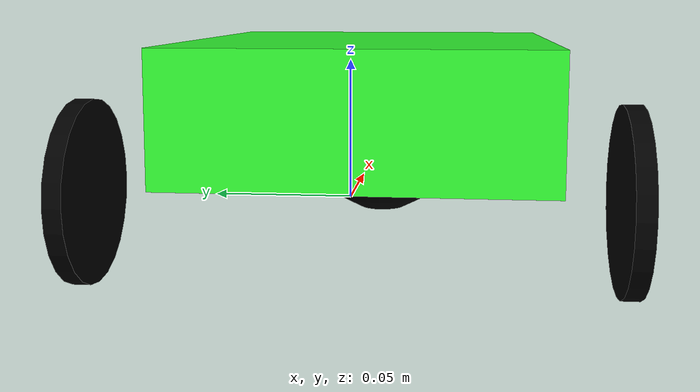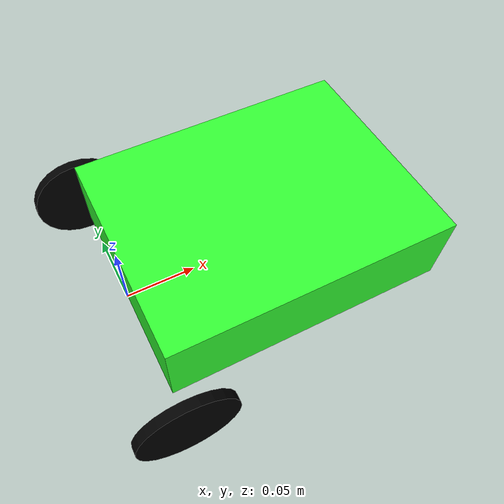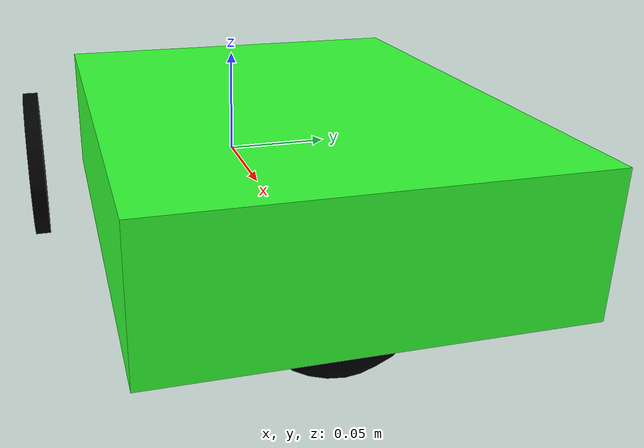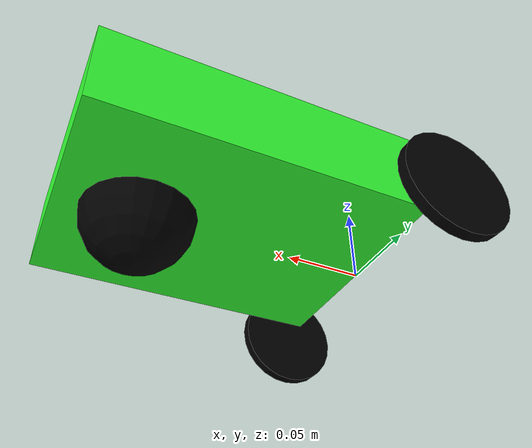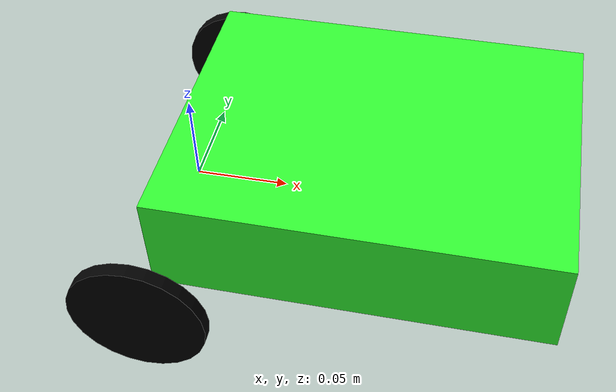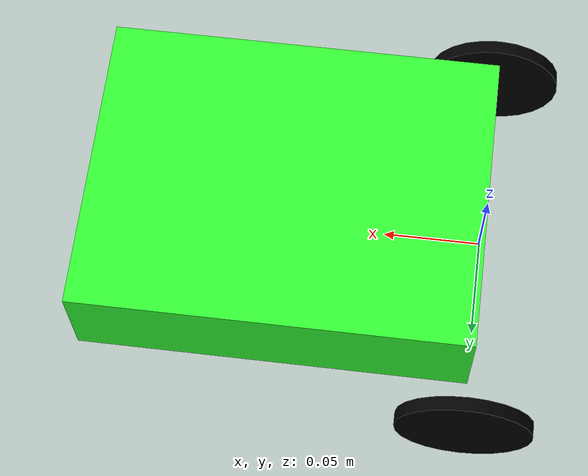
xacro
<?xml version="1.0"?>
<robot xmlns:xacro="http:www.ros.org/wiki/xacro" >

    <xacro:include filename="inertialmacros.xacro"/>

    <material name="white">
        <color rgba="1 1 1 1" />
    </material>

    <material name="black">
        <color rgba="0 0 0 1" />
    </material>

    <material name="green">
        <color rgba="0.2 1 0.2 1" />
    </material>

    <material name="blue">
        <color rgba="0.2 0.2 1 1" />
    </material>

    <material name="red">
        <color rgba="1 0.2 0.2 1" />
    </material>

    <link name="base_link">

    </link>

    <joint name="base_footprint_joint" type="fixed">
        <parent link="base_link"/>
        <child link="base_footprint"/>
        <origin xyz="0 0 0" rpy="0 0 0"/>
    </joint>

    <link name="base_footprint">

    </link>

    <joint name="chassis_joint" type="fixed">
        <parent link="base_link"/>
        <child link="chassis"/>
        <origin xyz="0 0 0"/>
    </joint>

    <link name="chassis">
        <visual>
            <origin xyz="0.1 0 0.027"/>
            <geometry>
                <box size="0.2 0.155 0.054" />
            </geometry>
            <material name="green"/>
        </visual>
        <collision>
            <origin xyz="0.1 0 0.027"/>
            <geometry>
                <box size="0.2 0.155 0.054" />
            </geometry>
        </collision>
        <xacro:inertialbox mass="0.5" x="0.2" y="0.155" z="0.054">
            <origin xyz="0.1 0 0.027" rpy="0 0 0"/>
        </xacro:inertialbox>
    </link>

    <joint name="left_wheel_joint" type="fixed">
        <parent link="base_link"/>
        <child link="left_wheel"/>
        <origin xyz="0 0.1 0" rpy="-${pi/2} 0 0"/>
        <axis xyz="0 0 1"/>
    </joint>

    <link name="left_wheel">
        <visual>
            <geometry>
                <cylinder radius="0.035" length="0.007"/>
            </geometry>
            <material name="black"/>
        </visual>
        <collision>
            <geometry>
                <cylinder radius="0.035" length="0.007"/>
            </geometry>
        </collision>
        <xacro:inertialcylinder mass="0.1" radius="0.035" length="0.007">
            <origin xyz="0 0 0" rpy="0 0 0"/>
        </xacro:inertialcylinder>
    </link>

    <joint name="right_wheel_joint" type="fixed">
        <parent link="base_link"/>
        <child link="right_wheel"/>
        <origin xyz="0 -0.1 0" rpy="${pi/2} 0 0"/>
        <axis xyz="0 0 -1"/>
    </joint>

    <link name="right_wheel">
        <visual>
            <geometry>
                <cylinder radius="0.035" length="0.007"/>
            </geometry>
            <material name="black"/>
        </visual>
        <collision>
            <geometry>
                <cylinder radius="0.035" length="0.007"/>
            </geometry>
        </collision>
        <xacro:inertialcylinder mass="0.1" radius="0.035" length="0.007">
            <origin xyz="0 0 0" rpy="0 0 0"/>
        </xacro:inertialcylinder>
    </link>

    <joint name="caster_wheel_joint" type="fixed">
        <parent link="chassis"/>
        <child link="caster_wheel"/>
        <origin xyz="0.15 0 0"/>
    </joint>

    <link name="caster_wheel">
        <visual>
            <geometry>
                <sphere radius="0.035"/>
            </geometry>
            <material name="black"/>
        </visual>
        <collision>
            <geometry>
                <sphere radius="0.035"/>
            </geometry>
        </collision>
        <xacro:inertialsphere mass="0.1" radius="0.035">
            <origin xyz="0 0 0" rpy="0 0 0"/>
        </xacro:inertialsphere>
    </link>

</robot>

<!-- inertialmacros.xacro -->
<robot xmlns:xacro="http://www.ros.org/wiki/xacro" >

    <!-- Specify some standard inertial calculations https://en.wikipedia.org/wiki/List_of_moments_of_inertia -->
    <!-- These make use of xacro's mathematical functionality -->

    <xacro:macro name="inertialsphere" params="mass radius *origin">
        <inertial>
            <xacro:insert_block name="origin"/>
            <mass value="${mass}" />
            <inertia ixx="${(2/5) * mass * (radius*radius)}" ixy="0.0" ixz="0.0"
                    iyy="${(2/5) * mass * (radius*radius)}" iyz="0.0"
                    izz="${(2/5) * mass * (radius*radius)}" />
        </inertial>
    </xacro:macro>

    <xacro:macro name="inertialbox" params="mass x y z *origin">
        <inertial>
            <xacro:insert_block name="origin"/>
            <mass value="${mass}" />
            <inertia ixx="${(1/12) * mass * (y*y+z*z)}" ixy="0.0" ixz="0.0"
                    iyy="${(1/12) * mass * (x*x+z*z)}" iyz="0.0"
                    izz="${(1/12) * mass * (x*x+y*y)}" />
        </inertial>
    </xacro:macro>

    <xacro:macro name="inertialcylinder" params="mass length radius *origin">
        <inertial>
            <xacro:insert_block name="origin"/>
            <mass value="${mass}" />
            <inertia ixx="${(1/12) * mass * (3*radius*radius + length*length)}" ixy="0.0" ixz="0.0"
                    iyy="${(1/12) * mass * (3*radius*radius + length*length)}" iyz="0.0"
                    izz="${(1/2) * mass * (radius*radius)}" />
        </inertial>
    </xacro:macro>

</robot>
